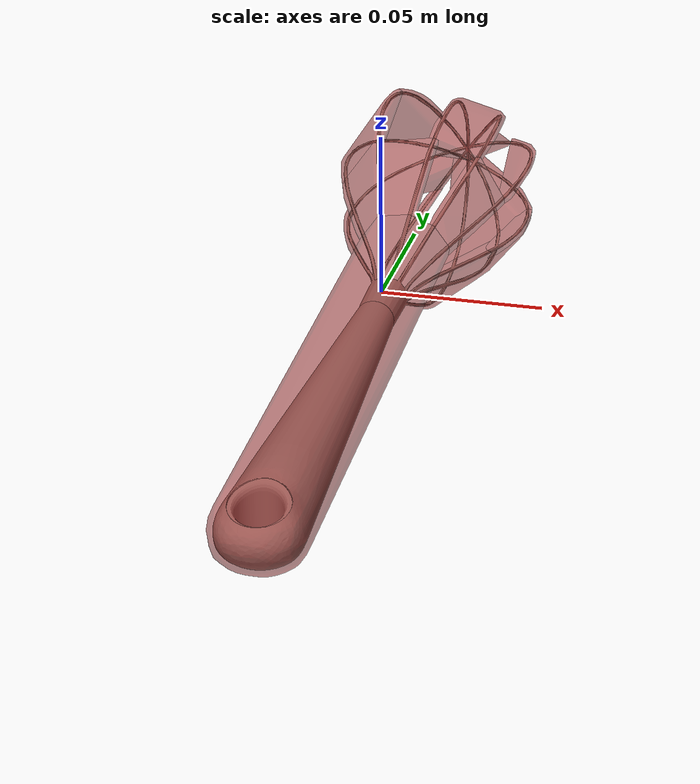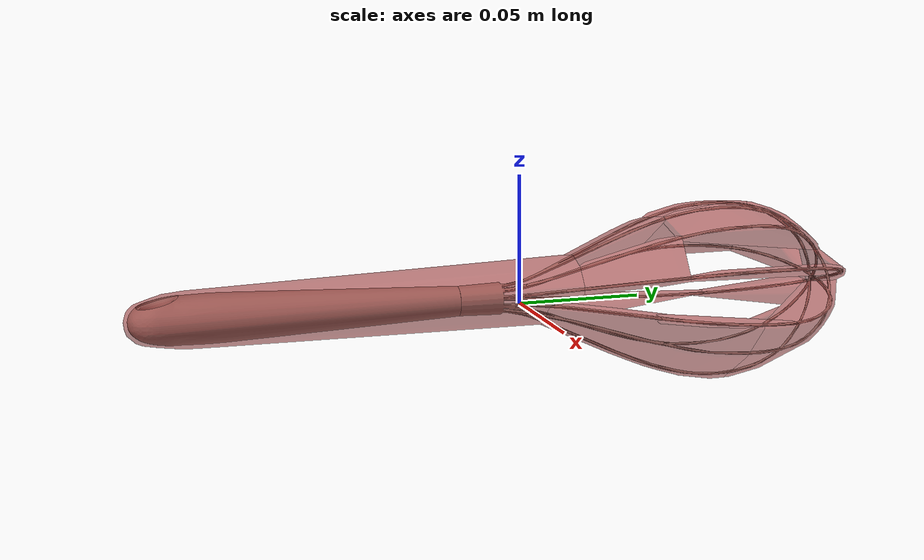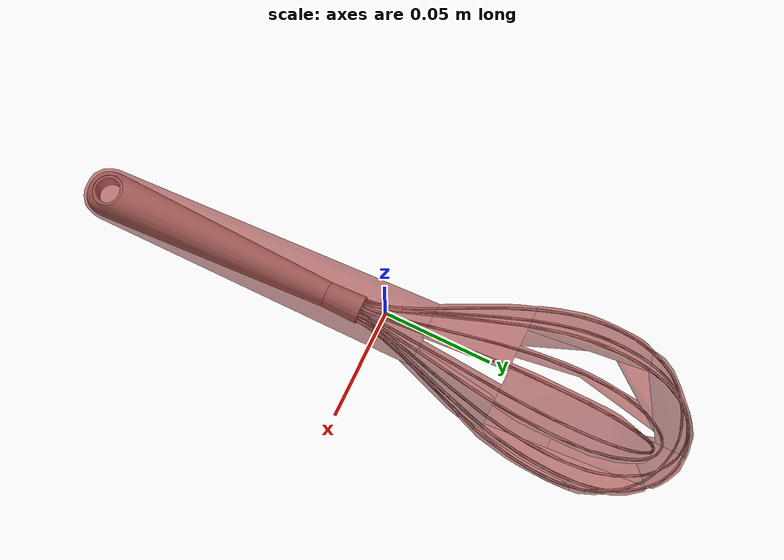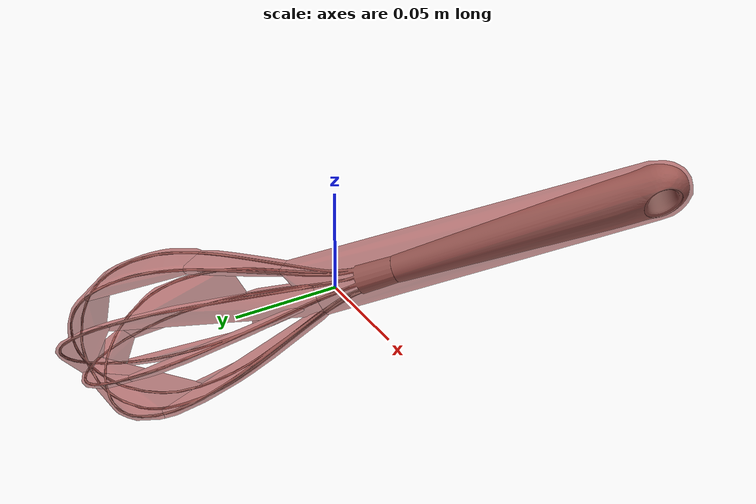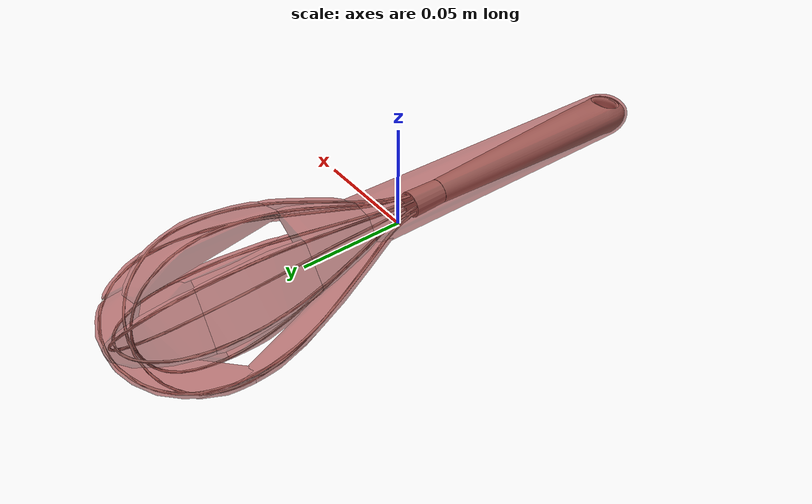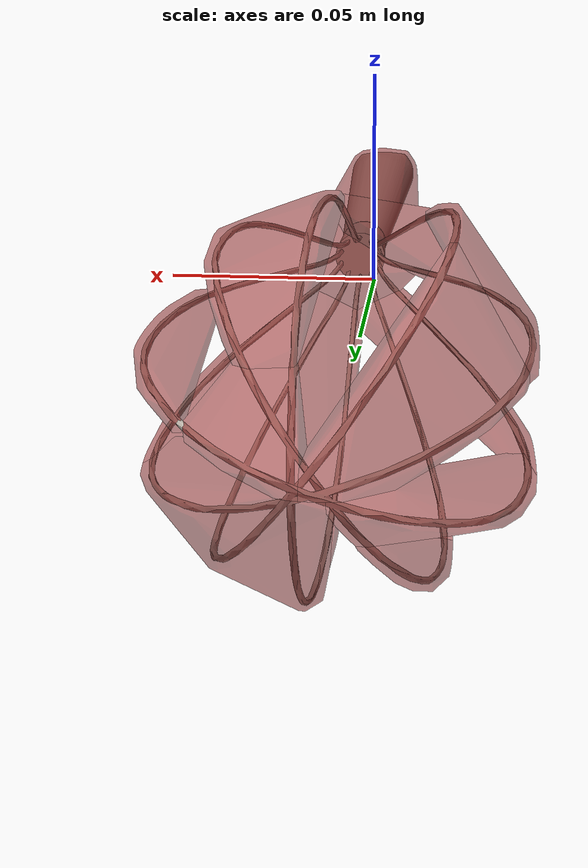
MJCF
<mujoco model="model">
  <option timestep="0.002" gravity="0.0 0.0 -9.81"/>
  <compiler angle="radian"/>
  <asset>
    <mesh file="visual/Whisk004.obj" name="Whisk004_vis"/>
    <mesh file="visual/Prop.obj" name="Whisk004_Prop_vis"/>
    <texture file="visual/T_BC001.png" name="Whisk004_material" type="2d"/>
    <material name="Whisk004_material" rgba="1 1 1 1.0" texture="Whisk004_material" shininess="1" specular="2"/>
    <texture file="visual/T_BC001.png" name="Whisk004_Prop_material" type="2d"/>
    <material name="Whisk004_Prop_material" rgba="1 1 1 1.0" texture="Whisk004_Prop_material" shininess="0.5" specular="0.3103448502657381"/>
    <mesh file="collision/collision_mesh_collision_0.obj" name="Whisk004_collision_mesh_0"/>
    <mesh file="collision/collision_mesh_collision_1.obj" name="Whisk004_collision_mesh_1"/>
    <mesh file="collision/collision_mesh_collision_2.obj" name="Whisk004_collision_mesh_2"/>
    <mesh file="collision/collision_mesh_collision_3.obj" name="Whisk004_collision_mesh_3"/>
    <mesh file="collision/collision_mesh_collision_4.obj" name="Whisk004_collision_mesh_4"/>
    <mesh file="collision/collision_mesh_collision_5.obj" name="Whisk004_collision_mesh_5"/>
    <mesh file="collision/collision_mesh_collision_6.obj" name="Whisk004_collision_mesh_6"/>
    <mesh file="collision/collision_mesh_collision_7.obj" name="Whisk004_collision_mesh_7"/>
    <mesh file="collision/collision_mesh_collision_8.obj" name="Whisk004_collision_mesh_8"/>
    <mesh file="collision/collision_mesh_collision_9.obj" name="Whisk004_collision_mesh_9"/>
    <mesh file="collision/collision_mesh_collision_10.obj" name="Whisk004_collision_mesh_10"/>
    <mesh file="collision/collision_mesh_collision_11.obj" name="Whisk004_collision_mesh_11"/>
    <mesh file="collision/collision_mesh_collision_12.obj" name="Whisk004_collision_mesh_12"/>
    <mesh file="collision/collision_mesh_collision_13.obj" name="Whisk004_collision_mesh_13"/>
    <mesh file="collision/collision_mesh_collision_14.obj" name="Whisk004_collision_mesh_14"/>
  </asset>
  <default>
    <default class="visual">
      <geom conaffinity="0" contype="0" group="1" type="mesh"/>
    </default>
    <default class="collision">
      <geom group="0" rgba="0.5 0 0 0.5" density="1.0" solref="0.004 1" solimp="0.998 0.998 0.001"/>
    </default>
    <default class="spawn">
      <geom group="0" rgba="1 1 1 0.5" contype="0" conaffinity="0"/>
      <site group="0" rgba="1 1 1 0.5"/>
    </default>
    <default class="region">
      <geom group="1" conaffinity="0" contype="0" rgba="0 1 0 0" mass="0"/>
    </default>
  </default>
  <worldbody>
    <body>
      <body name="object">
        <geom mesh="Whisk004_vis" type="mesh" solimp="0.998 0.998 0.001" solref="0.001 1" friction="0.95 0.3 0.1" class="visual" material="Whisk004_material"/>
        <body name="Whisk004_Prop">
          <geom mesh="Whisk004_Prop_vis" type="mesh" solimp="0.998 0.998 0.001" solref="0.001 1" friction="0.95 0.3 0.1" class="visual" material="Whisk004_Prop_material"/>
        </body>
        <geom class="region" name="reg_bbox" type="box" pos="2.9210000000001735e-05 -0.00030456500000000664 3.2094999999999346e-05" size="0.03474799 0.142736535 0.036943055"/>
        <geom mesh="Whisk004_collision_mesh_0" type="mesh" class="collision"/>
        <geom mesh="Whisk004_collision_mesh_1" type="mesh" class="collision"/>
        <geom mesh="Whisk004_collision_mesh_2" type="mesh" class="collision"/>
        <geom mesh="Whisk004_collision_mesh_3" type="mesh" class="collision"/>
        <geom mesh="Whisk004_collision_mesh_4" type="mesh" class="collision"/>
        <geom mesh="Whisk004_collision_mesh_5" type="mesh" class="collision"/>
        <geom mesh="Whisk004_collision_mesh_6" type="mesh" class="collision"/>
        <geom mesh="Whisk004_collision_mesh_7" type="mesh" class="collision"/>
        <geom mesh="Whisk004_collision_mesh_8" type="mesh" class="collision"/>
        <geom mesh="Whisk004_collision_mesh_9" type="mesh" class="collision"/>
        <geom mesh="Whisk004_collision_mesh_10" type="mesh" class="collision"/>
        <geom mesh="Whisk004_collision_mesh_11" type="mesh" class="collision"/>
        <geom mesh="Whisk004_collision_mesh_12" type="mesh" class="collision"/>
        <geom mesh="Whisk004_collision_mesh_13" type="mesh" class="collision"/>
        <geom mesh="Whisk004_collision_mesh_14" type="mesh" class="collision"/>
      </body>
    </body>
  </worldbody>
  <actuator/>
</mujoco>
